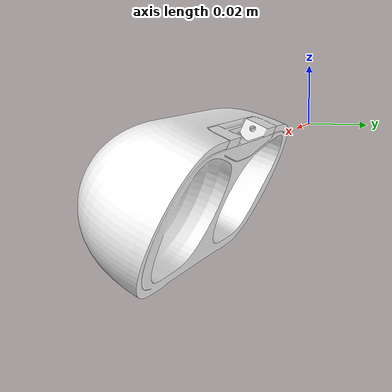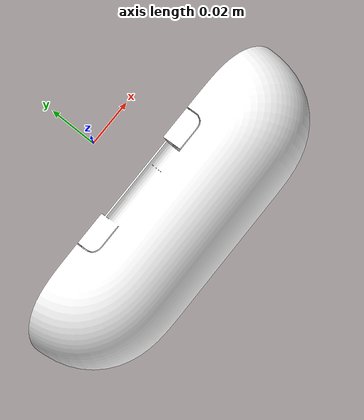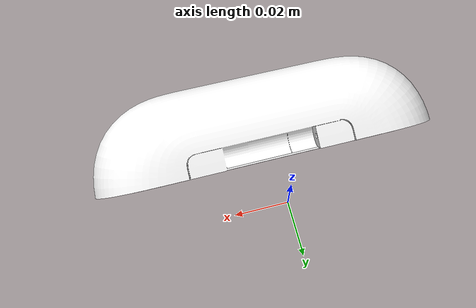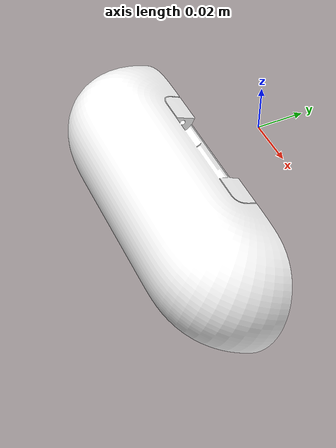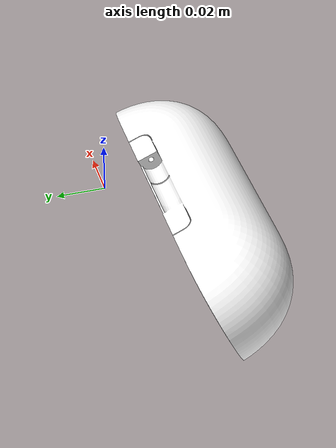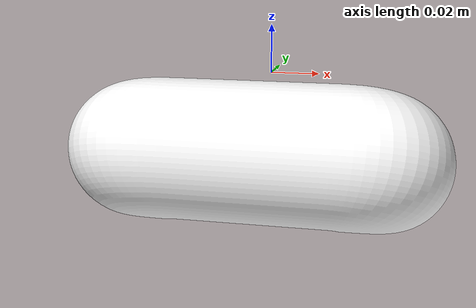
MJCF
<mujoco model="upper_case_resized_proper_1">
  <default>
    <default class="visual">
      <geom group="2" type="mesh" contype="0" conaffinity="0"/>
    </default>
    <default class="collision">
      <geom group="3" type="mesh"/>
    </default>
  </default>
  <asset>
    <material name="material_0" specular="0.4000000000000001" shininess="0.001" rgba="1.00000000 1.00000000 1.00000000 1.0"/>
    <mesh file="upper_case_resized_proper_1.obj"/>
    <mesh file="upper_case_resized_proper_1_collision_0.obj"/>
    <mesh file="upper_case_resized_proper_1_collision_1.obj"/>
    <mesh file="upper_case_resized_proper_1_collision_2.obj"/>
    <mesh file="upper_case_resized_proper_1_collision_3.obj"/>
    <mesh file="upper_case_resized_proper_1_collision_4.obj"/>
    <mesh file="upper_case_resized_proper_1_collision_5.obj"/>
    <mesh file="upper_case_resized_proper_1_collision_6.obj"/>
    <mesh file="upper_case_resized_proper_1_collision_7.obj"/>
    <mesh file="upper_case_resized_proper_1_collision_8.obj"/>
    <mesh file="upper_case_resized_proper_1_collision_9.obj"/>
    <mesh file="upper_case_resized_proper_1_collision_10.obj"/>
    <mesh file="upper_case_resized_proper_1_collision_11.obj"/>
    <mesh file="upper_case_resized_proper_1_collision_12.obj"/>
    <mesh file="upper_case_resized_proper_1_collision_13.obj"/>
    <mesh file="upper_case_resized_proper_1_collision_14.obj"/>
    <mesh file="upper_case_resized_proper_1_collision_15.obj"/>
    <mesh file="upper_case_resized_proper_1_collision_16.obj"/>
    <mesh file="upper_case_resized_proper_1_collision_17.obj"/>
    <mesh file="upper_case_resized_proper_1_collision_18.obj"/>
    <mesh file="upper_case_resized_proper_1_collision_19.obj"/>
    <mesh file="upper_case_resized_proper_1_collision_20.obj"/>
    <mesh file="upper_case_resized_proper_1_collision_21.obj"/>
    <mesh file="upper_case_resized_proper_1_collision_22.obj"/>
    <mesh file="upper_case_resized_proper_1_collision_23.obj"/>
    <mesh file="upper_case_resized_proper_1_collision_24.obj"/>
    <mesh file="upper_case_resized_proper_1_collision_25.obj"/>
    <mesh file="upper_case_resized_proper_1_collision_26.obj"/>
    <mesh file="upper_case_resized_proper_1_collision_27.obj"/>
    <mesh file="upper_case_resized_proper_1_collision_28.obj"/>
    <mesh file="upper_case_resized_proper_1_collision_29.obj"/>
    <mesh file="upper_case_resized_proper_1_collision_30.obj"/>
    <mesh file="upper_case_resized_proper_1_collision_31.obj"/>
    <mesh file="upper_case_resized_proper_1_collision_32.obj"/>
    <mesh file="upper_case_resized_proper_1_collision_33.obj"/>
    <mesh file="upper_case_resized_proper_1_collision_34.obj"/>
    <mesh file="upper_case_resized_proper_1_collision_35.obj"/>
    <mesh file="upper_case_resized_proper_1_collision_36.obj"/>
    <mesh file="upper_case_resized_proper_1_collision_37.obj"/>
  </asset>
  <worldbody>
    <body name="upper_case_resized_proper_1">
      <geom material="material_0" mesh="upper_case_resized_proper_1" class="visual"/>
      <geom mesh="upper_case_resized_proper_1_collision_0" rgba="0.16641449419337795 0.5203667368178123 0.15096410292867302 1" class="collision"/>
      <geom mesh="upper_case_resized_proper_1_collision_1" rgba="0.49038146800301086 0.36295352190150143 0.4848476773631629 1" class="collision"/>
      <geom mesh="upper_case_resized_proper_1_collision_2" rgba="0.6845946820868736 0.8397405974385738 0.934371534976638 1" class="collision"/>
      <geom mesh="upper_case_resized_proper_1_collision_3" rgba="0.6751710943004179 0.12483871680324987 0.4122171204543782 1" class="collision"/>
      <geom mesh="upper_case_resized_proper_1_collision_4" rgba="0.5348062273053661 0.5657136825680666 0.45449387376618033 1" class="collision"/>
      <geom mesh="upper_case_resized_proper_1_collision_5" rgba="0.9978664195416785 0.9138384897468755 0.23683357303070607 1" class="collision"/>
      <geom mesh="upper_case_resized_proper_1_collision_6" rgba="0.8821088038888262 0.5642813591305371 0.21119419709639942 1" class="collision"/>
      <geom mesh="upper_case_resized_proper_1_collision_7" rgba="0.2330041505080762 0.35952783307735103 0.12103817136808681 1" class="collision"/>
      <geom mesh="upper_case_resized_proper_1_collision_8" rgba="0.5683966076857302 0.40785505920284015 0.949029185451127 1" class="collision"/>
      <geom mesh="upper_case_resized_proper_1_collision_9" rgba="0.03792492656973623 0.36082335699118284 0.16860739101938682 1" class="collision"/>
      <geom mesh="upper_case_resized_proper_1_collision_10" rgba="0.5501550157502942 0.5971139650926999 0.12303014924869549 1" class="collision"/>
      <geom mesh="upper_case_resized_proper_1_collision_11" rgba="0.6414045303921123 0.275650417648155 0.7730518534065047 1" class="collision"/>
      <geom mesh="upper_case_resized_proper_1_collision_12" rgba="0.49687225143540414 0.9878812149121592 0.12169212716199973 1" class="collision"/>
      <geom mesh="upper_case_resized_proper_1_collision_13" rgba="0.9300982544623366 0.8198426140923706 0.04662121427136956 1" class="collision"/>
      <geom mesh="upper_case_resized_proper_1_collision_14" rgba="0.35127561944138863 0.6242797628965239 0.5236915847529005 1" class="collision"/>
      <geom mesh="upper_case_resized_proper_1_collision_15" rgba="0.8794213375379165 0.6987973434412341 0.4106984157172213 1" class="collision"/>
      <geom mesh="upper_case_resized_proper_1_collision_16" rgba="0.14661599596067232 0.1439547447206645 0.9487112159181388 1" class="collision"/>
      <geom mesh="upper_case_resized_proper_1_collision_17" rgba="0.6504028626216352 0.9121014006379587 0.25949020927540756 1" class="collision"/>
      <geom mesh="upper_case_resized_proper_1_collision_18" rgba="0.4854831087631317 0.43647017272027255 0.41923475441241365 1" class="collision"/>
      <geom mesh="upper_case_resized_proper_1_collision_19" rgba="0.32935232364930545 0.8670591292000998 0.1692982104898969 1" class="collision"/>
      <geom mesh="upper_case_resized_proper_1_collision_20" rgba="0.3924865202314005 0.9773694189280938 0.4226785112458358 1" class="collision"/>
      <geom mesh="upper_case_resized_proper_1_collision_21" rgba="0.974236782468711 0.5577675930636788 0.320519174902384 1" class="collision"/>
      <geom mesh="upper_case_resized_proper_1_collision_22" rgba="0.5951996096633179 0.31490315650087564 0.6376582484455625 1" class="collision"/>
      <geom mesh="upper_case_resized_proper_1_collision_23" rgba="0.725234489211007 0.6234164211105417 0.5805514432596621 1" class="collision"/>
      <geom mesh="upper_case_resized_proper_1_collision_24" rgba="0.9290080444954761 0.5846302725189784 0.7365929698883437 1" class="collision"/>
      <geom mesh="upper_case_resized_proper_1_collision_25" rgba="0.5587565907895005 0.16893003975484167 0.78898905214999 1" class="collision"/>
      <geom mesh="upper_case_resized_proper_1_collision_26" rgba="0.18839106340771405 0.21626709013868461 0.6604223346307158 1" class="collision"/>
      <geom mesh="upper_case_resized_proper_1_collision_27" rgba="0.6929834937430281 0.7222050085232717 0.5802316920547035 1" class="collision"/>
      <geom mesh="upper_case_resized_proper_1_collision_28" rgba="0.5916480875155412 0.17976321511793436 0.3432950666527258 1" class="collision"/>
      <geom mesh="upper_case_resized_proper_1_collision_29" rgba="0.824492508276539 0.27982696453692035 0.23952287417101015 1" class="collision"/>
      <geom mesh="upper_case_resized_proper_1_collision_30" rgba="0.637348643770558 0.5130708466021244 0.7034186061873041 1" class="collision"/>
      <geom mesh="upper_case_resized_proper_1_collision_31" rgba="0.9763615225442783 0.8268250121596682 0.8740483981962234 1" class="collision"/>
      <geom mesh="upper_case_resized_proper_1_collision_32" rgba="0.6899856997707461 0.30021231222339695 0.8688514759450497 1" class="collision"/>
      <geom mesh="upper_case_resized_proper_1_collision_33" rgba="0.7179125059048967 0.4589529796481757 0.6545849370676837 1" class="collision"/>
      <geom mesh="upper_case_resized_proper_1_collision_34" rgba="0.4159974592378676 0.035983246886154396 0.35246303544230606 1" class="collision"/>
      <geom mesh="upper_case_resized_proper_1_collision_35" rgba="0.5378769865268784 0.42645974700157674 0.37903089286835967 1" class="collision"/>
      <geom mesh="upper_case_resized_proper_1_collision_36" rgba="0.4795603717628898 0.3981354624346941 0.9036373339160372 1" class="collision"/>
      <geom mesh="upper_case_resized_proper_1_collision_37" rgba="0.5015764856315549 0.919401551546054 0.008791750459092862 1" class="collision"/>
    </body>
  </worldbody>
</mujoco>
